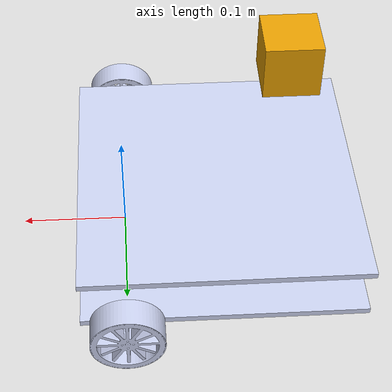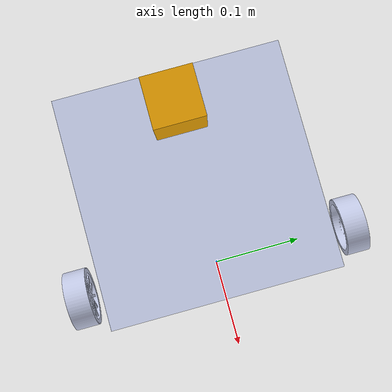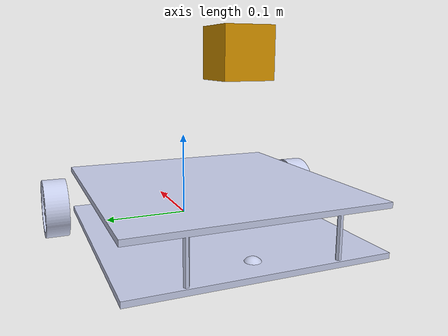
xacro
<?xml version="1.0"?>

<robot xmlns:xacro="http://ros.org/wiki/xacro" name="robot_base">

  <xacro:include filename="$(find robot_description)/urdf/robot_base_essentials.xacro" />
  <xacro:include filename="$(find robot_description)/urdf/gazebo_base_essentials.xacro" />

  <link name="base_footprint" />

  <joint name="base_joint" type="fixed">
    <parent link="base_footprint" />
    <child link="base_link" />
    <origin xyz="0 0 0" rpy="0 0 0" />
  </joint>

  <link name="base_link">
    <inertial>
      <origin xyz="0.0 0.0 0.0" rpy="0 0 0" />
      <mass value="1.3" />
      <inertia ixx="0.774276574699151" ixy="-1.03781944357671E-10" ixz="0.00763014265820928" iyy="1.64933255189991" iyz="1.09578155845563E-12" izz="2.1239326987473" />

    </inertial>
    <visual>
      <origin xyz="0.0 0.0 0.0" rpy="0 0 0" />
      <geometry>
        <mesh filename="package://robot_description/meshes/robot_base.stl" scale="0.001 0.001 0.001" />
      </geometry>
      <material name="">
        <color rgba="0.79216 0.81961 0.93333 1" />
      </material>
    </visual>
    <collision>
      <origin xyz="0 0 0" rpy="0 0 0" />
      <geometry>
        <mesh filename="package://robot_description/meshes/robot_base.stl" scale="0.001 0.001 0.001" />

      </geometry>
    </collision>
  </link>

  <xacro:robot_sphere prefix="rear_caster" />

  <xacro:sphere_joint prefix="rear_caster" origin="-0.1916 0.0017 -0.006" />

  <xacro:sphere_friction prefix="rear_caster" />

  <xacro:robot_wheel prefix="rear_left" />
  <xacro:robot_wheel prefix="rear_right" />

  <xacro:wheel_joint prefix="rear_left" origin="0 0.16 0.023" />
  <xacro:wheel_joint prefix="rear_right" origin="0 -0.16 0.023" />

  <xacro:wheel_friction prefix="rear_left" />
  <xacro:wheel_friction prefix="rear_right" />

  <xacro:base_transmission prefix="rear_left" />
  <xacro:base_transmission prefix="rear_right" />

</robot>

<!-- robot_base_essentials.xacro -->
<robot xmlns:xacro="http://ros.org/wiki/xacro" name="robot_essentials">

  <xacro:macro name="robot_wheel" params="prefix">

    <link name="${prefix}_wheel">
      <inertial>
        <origin xyz="0 0 0" rpy="0 0 0" />
        <mass value="0.30" />
        <inertia ixx="0.01" ixy="0.0" ixz="0.0" iyy="0.01" iyz="0.0" izz="0.01" />
      </inertial>
      <visual>
        <origin xyz="0 0 0" rpy="0 0 0" />
        <geometry>
          <mesh filename="package://robot_description/meshes/wheel.stl" scale="0.001 0.001 0.001" />
        </geometry>
        <material name="">
          <color rgba="0.79216 0.81961 0.93333 1" />
        </material>
      </visual>
      <collision>
        <origin xyz="0 0 0" rpy="0 0 0" />
        <geometry>
          <mesh filename="package://robot_description/meshes/wheel.stl" scale="0.001 0.001 0.001" />
        </geometry>
      </collision>
    </link>

  </xacro:macro>

  <xacro:macro name="robot_sphere" params="prefix">

    <link name="${prefix}_sphere">
      <inertial>
        <origin xyz="0 0 0" rpy="0 0 0" />
        <mass value="0.2" />
        <inertia ixx="0.01" ixy="0" ixz="0" iyy="0.01" iyz="0" izz="0.01" />
      </inertial>
      <visual>
        <origin xyz="0 0 0" rpy="0 0 0" />
        <geometry>
          <mesh filename="package://robot_description/meshes/sphere.stl" scale="0.001 0.001 0.001" />
        </geometry>
        <material name="">
          <color rgba="0.79216 0.81961 0.93333 1" />
        </material>
      </visual>
      <collision>
        <origin xyz="0 0 0" rpy="0 0 0" />
        <geometry>
          <mesh filename="package://robot_description/meshes/sphere.stl" scale="0.001 0.001 0.001" />
        </geometry>
      </collision>
    </link>

  </xacro:macro>

  <xacro:macro name="sphere_joint" params="prefix origin">

    <joint name="${prefix}_sphere_joint" type="fixed">
      <axis xyz="1 1 1" />
      <parent link="base_link" />
      <child link="${prefix}_sphere" />
      <origin rpy="0 0 0" xyz="${origin}" />
    </joint>

  </xacro:macro>

  <xacro:macro name="wheel_joint" params="prefix origin">

    <joint name="${prefix}_wheel_joint" type="continuous">
      <axis xyz="0 1 0" />
      <parent link="base_link" />
      <child link="${prefix}_wheel" />
      <origin rpy="0 0 0" xyz="${origin}" />
    </joint>

  </xacro:macro>

  <xacro:macro name="base_transmission" params="prefix ">

    <transmission name="${prefix}_wheel_trans" type="SimpleTransmission">
      <type>transmission_interface/SimpleTransmission</type>
      <actuator name="${prefix}_wheel_motor">
        <hardwareInterface>hardware_interface/VelocityJointInterface</hardwareInterface>
        <mechanicalReduction>1</mechanicalReduction>
      </actuator>
      <joint name="${prefix}_wheel_joint">
        <hardwareInterface>hardware_interface/VelocityJointInterface</hardwareInterface>
      </joint>
    </transmission>

  </xacro:macro>

  <link name="laser_link">
    <collision>
      <origin xyz="0 0 0" rpy="0 0 0" />
      <geometry>
        <box size="0.1 0.1 0.05" />
      </geometry>
    </collision>
    <visual>
      <origin xyz="0 0 0" rpy="0 0 0" />
      <geometry>
        <box size="0.05 0.05 0.05" />
      </geometry>
    </visual>
    <inertial>
      <mass value="1e-5" />
      <origin xyz="0 0 0" rpy="0 0 0" />
      <inertia ixx="1e-6" ixy="0" ixz="0" iyy="1e-6" iyz="0" izz="1e-6" />
    </inertial>
  </link>

  <joint name="laser_joint" type="fixed">
    <axis xyz="0 1 0" />
    <origin xyz="-0.15 0 0.2" rpy="0 0 0" />
    <parent link="base_link" />
    <child link="laser_link" />
  </joint>

  <link name="imu_link" />

  <joint name="imu_joint" type="fixed">
    <parent link="base_link" />
    <child link="imu_link" />
    <origin xyz="0.0 0 0.07" rpy="0 0 0" />
  </joint>

</robot>
